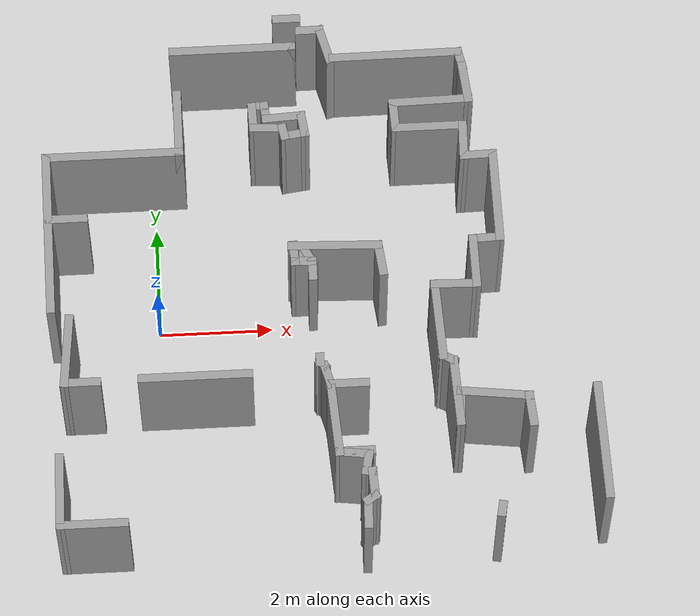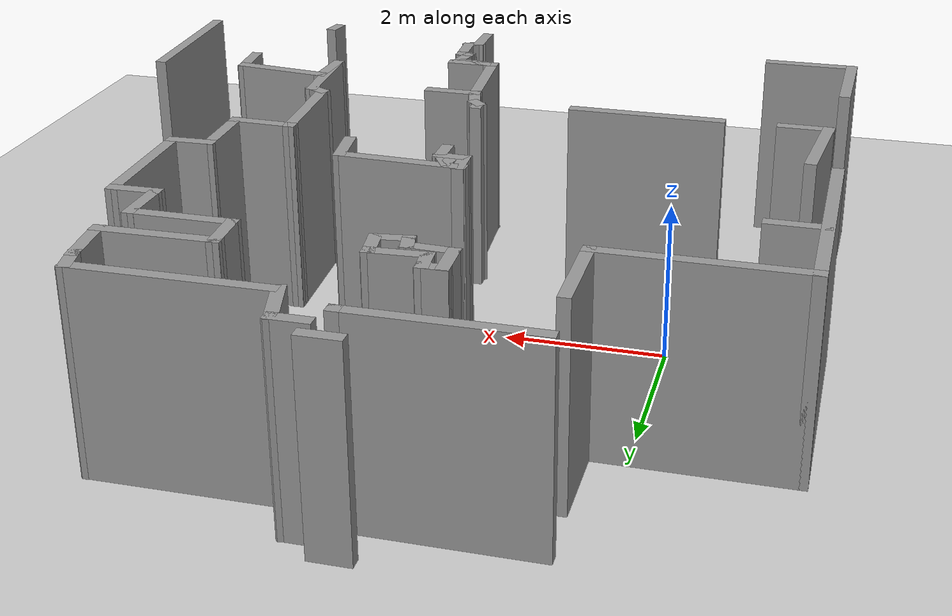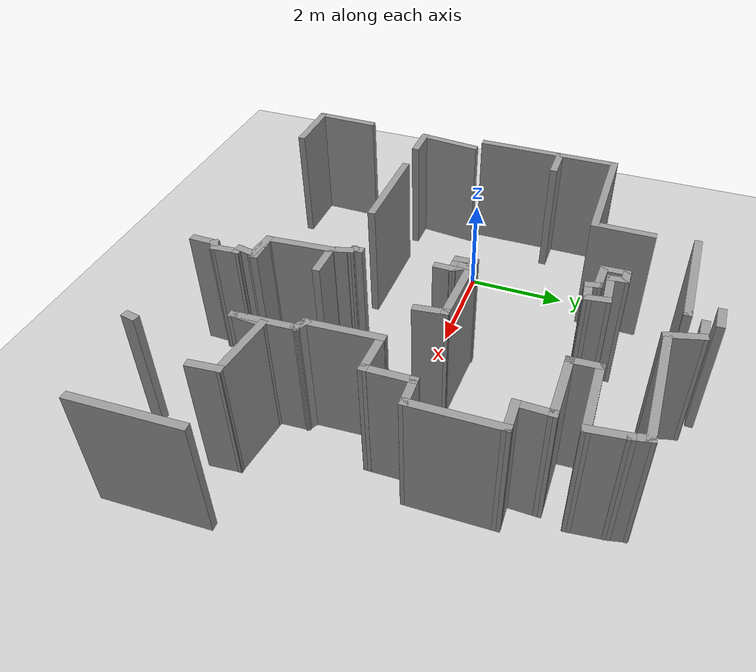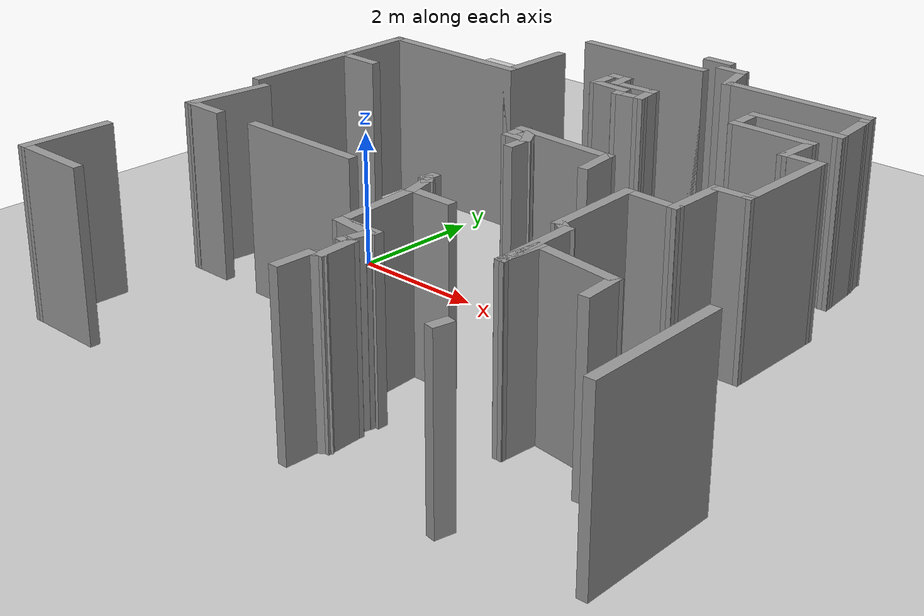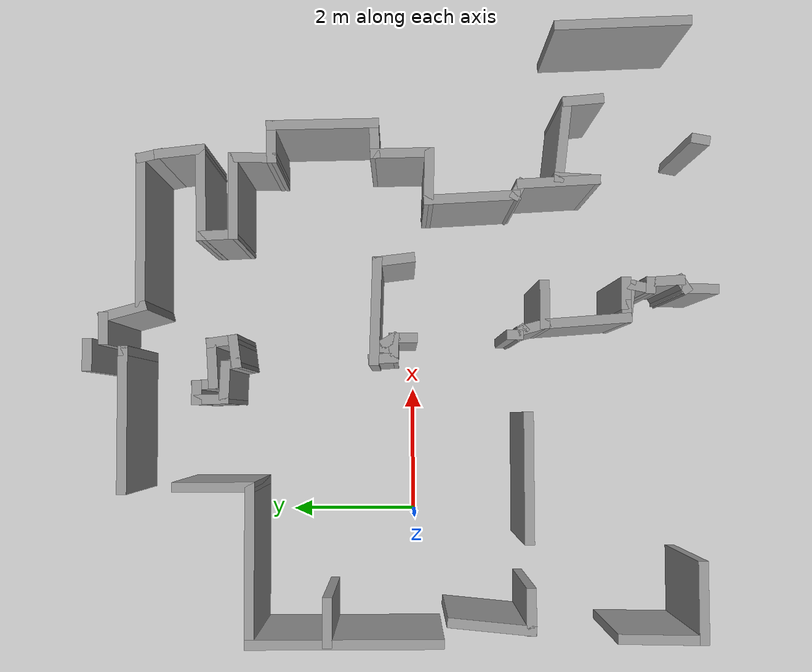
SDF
<sdf version="1.6">
 <world name="default">
  <model name="ground_plane">
   <static>1</static>
   <link name="link">
    <collision name="collision">
     <geometry><plane><normal>0 0 1</normal><size>100 100</size></plane></geometry>
     <surface><friction><ode><mu>100</mu><mu2>50</mu2></ode></friction></surface>
    </collision>
    <visual name="visual">
     <cast_shadows>0</cast_shadows>
     <geometry><plane><normal>0 0 1</normal><size>100 100</size></plane></geometry>
     <material>
      <script><uri>file://media/materials/scripts/gazebo.material</uri><name>Gazebo/Grey</name></script>
     </material>
    </visual>
   </link>
  </model>
  <model name="amtc_draft">
   <pose>2.88328 0.198841 0 0 -0 0</pose>
   <link name="Wall_0">
    <collision name="Wall_0_Collision">
     <geometry><box><size>2.25 0.15 2.5</size></box></geometry>
     <pose>0 0 1.25 0 -0 0</pose>
    </collision>
    <visual name="Wall_0_Visual">
     <pose>0 0 1.25 0 -0 0</pose>
     <geometry><box><size>2.25 0.15 2.5</size></box></geometry>
     <material>
      <script><uri>file://media/materials/scripts/gazebo.material</uri><name>Gazebo/Grey</name></script>
      <ambient>1 1 1 1</ambient>
     </material>
     <meta><layer>0</layer></meta>
    </visual>
    <pose>-1.37369 4.2257 0 0 -0 0</pose>
   </link>
   <link name="Wall_1">
    <collision name="Wall_1_Collision">
     <geometry><box><size>0.15 0.15 2.5</size></box></geometry>
     <pose>0 0 1.25 0 -0 0</pose>
    </collision>
    <visual name="Wall_1_Visual">
     <pose>0 0 1.25 0 -0 0</pose>
     <geometry><box><size>0.15 0.15 2.5</size></box></geometry>
     <material>
      <script><uri>file://media/materials/scripts/gazebo.material</uri><name>Gazebo/Grey</name></script>
      <ambient>1 1 1 1</ambient>
     </material>
     <meta><layer>0</layer></meta>
    </visual>
    <pose>-0.323685 4.2257 0 0 -0 0</pose>
   </link>
   <link name="Wall_11">
    <collision name="Wall_11_Collision">
     <geometry><box><size>2.5 0.15 2.5</size></box></geometry>
     <pose>0 0 1.25 0 -0 0</pose>
    </collision>
    <visual name="Wall_11_Visual">
     <pose>0 0 1.25 0 -0 0</pose>
     <geometry><box><size>2.5 0.15 2.5</size></box></geometry>
     <material>
      <script><uri>file://media/materials/scripts/gazebo.material</uri><name>Gazebo/Grey</name></script>
      <ambient>1 1 1 1</ambient>
     </material>
     <meta><layer>0</layer></meta>
    </visual>
    <pose>-3.56442 2.29394 0 0 -0 0</pose>
   </link>
   <link name="Wall_12">
    <collision name="Wall_12_Collision">
     <geometry><box><size>1.25 0.15 2.5</size></box></geometry>
     <pose>0 0 1.25 0 -0 0</pose>
    </collision>
    <visual name="Wall_12_Visual">
     <pose>0 0 1.25 0 -0 0</pose>
     <geometry><box><size>1.25 0.15 2.5</size></box></geometry>
     <material>
      <script><uri>file://media/materials/scripts/gazebo.material</uri><name>Gazebo/Grey</name></script>
      <ambient>1 1 1 1</ambient>
     </material>
     <meta><layer>0</layer></meta>
    </visual>
    <pose>-2.38942 2.84394 0 0 -0 1.5708</pose>
   </link>
   <link name="Wall_14">
    <collision name="Wall_14_Collision">
     <geometry><box><size>3 0.15 2.5</size></box></geometry>
     <pose>0 0 1.25 0 -0 0</pose>
    </collision>
    <visual name="Wall_14_Visual">
     <pose>0 0 1.25 0 -0 0</pose>
     <geometry><box><size>3 0.15 2.5</size></box></geometry>
     <material>
      <script><uri>file://media/materials/scripts/gazebo.material</uri><name>Gazebo/Grey</name></script>
      <ambient>1 1 1 1</ambient>
     </material>
     <meta><layer>0</layer></meta>
    </visual>
    <pose>-4.73942 0.868941 0 0 0 -1.5708</pose>
   </link>
   <link name="Wall_16">
    <collision name="Wall_16_Collision">
     <geometry><box><size>1.34561 0.15 2.5</size></box></geometry>
     <pose>0 0 1.25 0 -0 0</pose>
    </collision>
    <visual name="Wall_16_Visual">
     <pose>0 0 1.25 0 -0 0</pose>
     <geometry><box><size>1.34561 0.15 2.5</size></box></geometry>
     <material>
      <script><uri>file://media/materials/scripts/gazebo.material</uri><name>Gazebo/Grey</name></script>
      <ambient>1 1 1 1</ambient>
     </material>
     <meta><layer>0</layer></meta>
    </visual>
    <pose>-4.48581 -1.34399 0 0 0 -1.67338</pose>
   </link>
   <link name="Wall_17">
    <collision name="Wall_17_Collision">
     <geometry><box><size>0.709682 0.15 2.5</size></box></geometry>
     <pose>0 0 1.25 0 -0 0</pose>
    </collision>
    <visual name="Wall_17_Visual">
     <pose>0 0 1.25 0 -0 0</pose>
     <geometry><box><size>0.709682 0.15 2.5</size></box></geometry>
     <material>
      <script><uri>file://media/materials/scripts/gazebo.material</uri><name>Gazebo/Grey</name></script>
      <ambient>1 1 1 1</ambient>
     </material>
     <meta><layer>0</layer></meta>
    </visual>
    <pose>-4.26719 -1.93865 0 0 -0 0</pose>
   </link>
   <link name="Wall_19">
    <collision name="Wall_19_Collision">
     <geometry><box><size>2 0.15 2.5</size></box></geometry>
     <pose>0 0 1.25 0 -0 0</pose>
    </collision>
    <visual name="Wall_19_Visual">
     <pose>0 0 1.25 0 -0 0</pose>
     <geometry><box><size>2 0.15 2.5</size></box></geometry>
     <material>
      <script><uri>file://media/materials/scripts/gazebo.material</uri><name>Gazebo/Grey</name></script>
      <ambient>1 1 1 1</ambient>
     </material>
     <meta><layer>0</layer></meta>
    </visual>
    <pose>-2.27529 -1.92116 0 0 -0 0</pose>
   </link>
   <link name="Wall_2">
    <collision name="Wall_2_Collision">
     <geometry><box><size>0.15 0.15 2.5</size></box></geometry>
     <pose>0 0 1.25 0 -0 0</pose>
    </collision>
    <visual name="Wall_2_Visual">
     <pose>0 0 1.25 0 -0 0</pose>
     <geometry><box><size>0.15 0.15 2.5</size></box></geometry>
     <material>
      <script><uri>file://media/materials/scripts/gazebo.material</uri><name>Gazebo/Grey</name></script>
      <ambient>1 1 1 1</ambient>
     </material>
     <meta><layer>0</layer></meta>
    </visual>
    <pose>-0.323685 4.2257 0 0 -0 0</pose>
   </link>
   <link name="Wall_22">
    <collision name="Wall_22_Collision">
     <geometry><box><size>0.25 0.15 2.5</size></box></geometry>
     <pose>0 0 1.25 0 -0 0</pose>
    </collision>
    <visual name="Wall_22_Visual">
     <pose>0 0 1.25 0 -0 0</pose>
     <geometry><box><size>0.25 0.15 2.5</size></box></geometry>
     <material>
      <script><uri>file://media/materials/scripts/gazebo.material</uri><name>Gazebo/Grey</name></script>
      <ambient>1 1 1 1</ambient>
     </material>
     <meta><layer>0</layer></meta>
    </visual>
    <pose>-0.104552 -1.7263 0 0 0 -1.5708</pose>
   </link>
   <link name="Wall_23">
    <collision name="Wall_23_Collision">
     <geometry><box><size>0.25 0.15 2.5</size></box></geometry>
     <pose>0 0 1.25 0 -0 0</pose>
    </collision>
    <visual name="Wall_23_Visual">
     <pose>0 0 1.25 0 -0 0</pose>
     <geometry><box><size>0.25 0.15 2.5</size></box></geometry>
     <material>
      <script><uri>file://media/materials/scripts/gazebo.material</uri><name>Gazebo/Grey</name></script>
      <ambient>1 1 1 1</ambient>
     </material>
     <meta><layer>0</layer></meta>
    </visual>
    <pose>-0.069196 -1.81166 0 0 0 -0.785398</pose>
   </link>
   <link name="Wall_24">
    <collision name="Wall_24_Collision">
     <geometry><box><size>0.5 0.15 2.5</size></box></geometry>
     <pose>0 0 1.25 0 -0 0</pose>
    </collision>
    <visual name="Wall_24_Visual">
     <pose>0 0 1.25 0 -0 0</pose>
     <geometry><box><size>0.5 0.15 2.5</size></box></geometry>
     <material>
      <script><uri>file://media/materials/scripts/gazebo.material</uri><name>Gazebo/Grey</name></script>
      <ambient>1 1 1 1</ambient>
     </material>
     <meta><layer>0</layer></meta>
    </visual>
    <pose>0.011452 -2.01605 0 0 0 -1.309</pose>
   </link>
   <link name="Wall_25">
    <collision name="Wall_25_Collision">
     <geometry><box><size>0.75 0.15 2.5</size></box></geometry>
     <pose>0 0 1.25 0 -0 0</pose>
    </collision>
    <visual name="Wall_25_Visual">
     <pose>0 0 1.25 0 -0 0</pose>
     <geometry><box><size>0.75 0.15 2.5</size></box></geometry>
     <material>
      <script><uri>file://media/materials/scripts/gazebo.material</uri><name>Gazebo/Grey</name></script>
      <ambient>1 1 1 1</ambient>
     </material>
     <meta><layer>0</layer></meta>
    </visual>
    <pose>0.356746 -2.18509 0 0 -0 0</pose>
   </link>
   <link name="Wall_29">
    <collision name="Wall_29_Collision">
     <geometry><box><size>0.5 0.15 2.5</size></box></geometry>
     <pose>0 0 1.25 0 -0 0</pose>
    </collision>
    <visual name="Wall_29_Visual">
     <pose>0 0 1.25 0 -0 0</pose>
     <geometry><box><size>0.5 0.15 2.5</size></box></geometry>
     <material>
      <script><uri>file://media/materials/scripts/gazebo.material</uri><name>Gazebo/Grey</name></script>
      <ambient>1 1 1 1</ambient>
     </material>
     <meta><layer>0</layer></meta>
    </visual>
    <pose>0.518345 -3.42555 0 0 -0 3.14159</pose>
   </link>
   <link name="Wall_30">
    <collision name="Wall_30_Collision">
     <geometry><box><size>0.25 0.15 2.5</size></box></geometry>
     <pose>0 0 1.25 0 -0 0</pose>
    </collision>
    <visual name="Wall_30_Visual">
     <pose>0 0 1.25 0 -0 0</pose>
     <geometry><box><size>0.25 0.15 2.5</size></box></geometry>
     <material>
      <script><uri>file://media/materials/scripts/gazebo.material</uri><name>Gazebo/Grey</name></script>
      <ambient>1 1 1 1</ambient>
     </material>
     <meta><layer>0</layer></meta>
    </visual>
    <pose>0.293345 -3.42555 0 0 -0 3.14159</pose>
   </link>
   <link name="Wall_32">
    <collision name="Wall_32_Collision">
     <geometry><box><size>1.40231 0.15 2.5</size></box></geometry>
     <pose>0 0 1.25 0 -0 0</pose>
    </collision>
    <visual name="Wall_32_Visual">
     <pose>0 0 1.25 0 -0 0</pose>
     <geometry><box><size>1.40231 0.15 2.5</size></box></geometry>
     <material>
      <script><uri>file://media/materials/scripts/gazebo.material</uri><name>Gazebo/Grey</name></script>
      <ambient>1 1 1 1</ambient>
     </material>
     <meta><layer>0</layer></meta>
    </visual>
    <pose>0.101132 -2.80967 0 0 0 -1.49985</pose>
   </link>
   <link name="Wall_33">
    <collision name="Wall_33_Collision">
     <geometry><box><size>0.658008 0.15 2.5</size></box></geometry>
     <pose>0 0 1.25 0 -0 0</pose>
    </collision>
    <visual name="Wall_33_Visual">
     <pose>0 0 1.25 0 -0 0</pose>
     <geometry><box><size>0.658008 0.15 2.5</size></box></geometry>
     <material>
      <script><uri>file://media/materials/scripts/gazebo.material</uri><name>Gazebo/Grey</name></script>
      <ambient>1 1 1 1</ambient>
     </material>
     <meta><layer>0</layer></meta>
    </visual>
    <pose>0.397693 -3.46468 0 0 0 -0.120109</pose>
   </link>
   <link name="Wall_34">
    <collision name="Wall_34_Collision">
     <geometry><box><size>0.460375 0.15 2.5</size></box></geometry>
     <pose>0 0 1.25 0 -0 0</pose>
    </collision>
    <visual name="Wall_34_Visual">
     <pose>0 0 1.25 0 -0 0</pose>
     <geometry><box><size>0.460375 0.15 2.5</size></box></geometry>
     <material>
      <script><uri>file://media/materials/scripts/gazebo.material</uri><name>Gazebo/Grey</name></script>
      <ambient>1 1 1 1</ambient>
     </material>
     <meta><layer>0</layer></meta>
    </visual>
    <pose>0.619432 -3.64729 0 0 0 -1.76819</pose>
   </link>
   <link name="Wall_35">
    <collision name="Wall_35_Collision">
     <geometry><box><size>0.25471 0.15 2.5</size></box></geometry>
     <pose>0 0 1.25 0 -0 0</pose>
    </collision>
    <visual name="Wall_35_Visual">
     <pose>0 0 1.25 0 -0 0</pose>
     <geometry><box><size>0.25471 0.15 2.5</size></box></geometry>
     <material>
      <script><uri>file://media/materials/scripts/gazebo.material</uri><name>Gazebo/Grey</name></script>
      <ambient>1 1 1 1</ambient>
     </material>
     <meta><layer>0</layer></meta>
    </visual>
    <pose>0.641171 -3.80381 0 0 0 -0.083141</pose>
   </link>
   <link name="Wall_36">
    <collision name="Wall_36_Collision">
     <geometry><box><size>0.594245 0.15 2.5</size></box></geometry>
     <pose>0 0 1.25 0 -0 0</pose>
    </collision>
    <visual name="Wall_36_Visual">
     <pose>0 0 1.25 0 -0 0</pose>
     <geometry><box><size>0.594245 0.15 2.5</size></box></geometry>
     <material>
      <script><uri>file://media/materials/scripts/gazebo.material</uri><name>Gazebo/Grey</name></script>
      <ambient>1 1 1 1</ambient>
     </material>
     <meta><layer>0</layer></meta>
    </visual>
    <pose>0.706388 -4.0299 0 0 0 -1.51204</pose>
   </link>
   <link name="Wall_37">
    <collision name="Wall_37_Collision">
     <geometry><box><size>0.306763 0.15 2.5</size></box></geometry>
     <pose>0 0 1.25 0 -0 0</pose>
    </collision>
    <visual name="Wall_37_Visual">
     <pose>0 0 1.25 0 -0 0</pose>
     <geometry><box><size>0.306763 0.15 2.5</size></box></geometry>
     <material>
      <script><uri>file://media/materials/scripts/gazebo.material</uri><name>Gazebo/Grey</name></script>
      <ambient>1 1 1 1</ambient>
     </material>
     <meta><layer>0</layer></meta>
    </visual>
    <pose>0.654214 -4.29512 0 0 0 -2.55359</pose>
   </link>
   <link name="Wall_38">
    <collision name="Wall_38_Collision">
     <geometry><box><size>0.576176 0.15 2.5</size></box></geometry>
     <pose>0 0 1.25 0 -0 0</pose>
    </collision>
    <visual name="Wall_38_Visual">
     <pose>0 0 1.25 0 -0 0</pose>
     <geometry><box><size>0.576176 0.15 2.5</size></box></geometry>
     <material>
      <script><uri>file://media/materials/scripts/gazebo.material</uri><name>Gazebo/Grey</name></script>
      <ambient>1 1 1 1</ambient>
     </material>
     <meta><layer>0</layer></meta>
    </visual>
    <pose>0.584649 -4.55164 0 0 0 -1.5912</pose>
   </link>
   <link name="Wall_4">
    <collision name="Wall_4_Collision">
     <geometry><box><size>0.5 0.15 2.5</size></box></geometry>
     <pose>0 0 1.25 0 -0 0</pose>
    </collision>
    <visual name="Wall_4_Visual">
     <pose>0 0 1.25 0 -0 0</pose>
     <geometry><box><size>0.5 0.15 2.5</size></box></geometry>
     <material>
      <script><uri>file://media/materials/scripts/gazebo.material</uri><name>Gazebo/Grey</name></script>
      <ambient>1 1 1 1</ambient>
     </material>
     <meta><layer>0</layer></meta>
    </visual>
    <pose>-0.385685 4.7662 0 0 -0 0</pose>
   </link>
   <link name="Wall_40">
    <collision name="Wall_40_Collision">
     <geometry><box><size>0.291555 0.15 2.5</size></box></geometry>
     <pose>0 0 1.25 0 -0 0</pose>
    </collision>
    <visual name="Wall_40_Visual">
     <pose>0 0 1.25 0 -0 0</pose>
     <geometry><box><size>0.291555 0.15 2.5</size></box></geometry>
     <material>
      <script><uri>file://media/materials/scripts/gazebo.material</uri><name>Gazebo/Grey</name></script>
      <ambient>1 1 1 1</ambient>
     </material>
     <meta><layer>0</layer></meta>
    </visual>
    <pose>2.8803 -4.59947 0 0 -0 1.38545</pose>
   </link>
   <link name="Wall_42">
    <collision name="Wall_42_Collision">
     <geometry><box><size>2.12514 0.15 2.5</size></box></geometry>
     <pose>0 0 1.25 0 -0 0</pose>
    </collision>
    <visual name="Wall_42_Visual">
     <pose>0 0 1.25 0 -0 0</pose>
     <geometry><box><size>2.12514 0.15 2.5</size></box></geometry>
     <material>
      <script><uri>file://media/materials/scripts/gazebo.material</uri><name>Gazebo/Grey</name></script>
      <ambient>1 1 1 1</ambient>
     </material>
     <meta><layer>0</layer></meta>
    </visual>
    <pose>4.70204 -3.4386 0 0 -0 1.60602</pose>
   </link>
   <link name="Wall_44">
    <collision name="Wall_44_Collision">
     <geometry><box><size>0.638894 0.15 2.5</size></box></geometry>
     <pose>0 0 1.25 0 -0 0</pose>
    </collision>
    <visual name="Wall_44_Visual">
     <pose>0 0 1.25 0 -0 0</pose>
     <geometry><box><size>0.638894 0.15 2.5</size></box></geometry>
     <material>
      <script><uri>file://media/materials/scripts/gazebo.material</uri><name>Gazebo/Grey</name></script>
      <ambient>1 1 1 1</ambient>
     </material>
     <meta><layer>0</layer></meta>
    </visual>
    <pose>3.49769 -2.80816 0 0 -0 1.65985</pose>
   </link>
   <link name="Wall_45">
    <collision name="Wall_45_Collision">
     <geometry><box><size>1.33213 0.15 2.5</size></box></geometry>
     <pose>0 0 1.25 0 -0 0</pose>
    </collision>
    <visual name="Wall_45_Visual">
     <pose>0 0 1.25 0 -0 0</pose>
     <geometry><box><size>1.33213 0.15 2.5</size></box></geometry>
     <material>
      <script><uri>file://media/materials/scripts/gazebo.material</uri><name>Gazebo/Grey</name></script>
      <ambient>1 1 1 1</ambient>
     </material>
     <meta><layer>0</layer></meta>
    </visual>
    <pose>2.889 -2.49512 0 0 -0 3.02362</pose>
   </link>
   <link name="Wall_46">
    <collision name="Wall_46_Collision">
     <geometry><box><size>0.707608 0.15 2.5</size></box></geometry>
     <pose>0 0 1.25 0 -0 0</pose>
    </collision>
    <visual name="Wall_46_Visual">
     <pose>0 0 1.25 0 -0 0</pose>
     <geometry><box><size>0.707608 0.15 2.5</size></box></geometry>
     <material>
      <script><uri>file://media/materials/scripts/gazebo.material</uri><name>Gazebo/Grey</name></script>
      <ambient>1 1 1 1</ambient>
     </material>
     <meta><layer>0</layer></meta>
    </visual>
    <pose>2.28465 -2.70382 0 0 0 -1.63322</pose>
   </link>
   <link name="Wall_47">
    <collision name="Wall_47_Collision">
     <geometry><box><size>1.28207 0.15 2.5</size></box></geometry>
     <pose>0 0 1.25 0 -0 0</pose>
    </collision>
    <visual name="Wall_47_Visual">
     <pose>0 0 1.25 0 -0 0</pose>
     <geometry><box><size>1.28207 0.15 2.5</size></box></geometry>
     <material>
      <script><uri>file://media/materials/scripts/gazebo.material</uri><name>Gazebo/Grey</name></script>
      <ambient>1 1 1 1</ambient>
     </material>
     <meta><layer>0</layer></meta>
    </visual>
    <pose>2.23682 -2.41686 0 0 -0 1.62459</pose>
   </link>
   <link name="Wall_48">
    <collision name="Wall_48_Collision">
     <geometry><box><size>0.348482 0.15 2.5</size></box></geometry>
     <pose>0 0 1.25 0 -0 0</pose>
    </collision>
    <visual name="Wall_48_Visual">
     <pose>0 0 1.25 0 -0 0</pose>
     <geometry><box><size>0.348482 0.15 2.5</size></box></geometry>
     <material>
      <script><uri>file://media/materials/scripts/gazebo.material</uri><name>Gazebo/Grey</name></script>
      <ambient>1 1 1 1</ambient>
     </material>
     <meta><layer>0</layer></meta>
    </visual>
    <pose>2.11943 -1.80381 0 0 -0 2.63875</pose>
   </link>
   <link name="Wall_49">
    <collision name="Wall_49_Collision">
     <geometry><box><size>1.48273 0.15 2.5</size></box></geometry>
     <pose>0 0 1.25 0 -0 0</pose>
    </collision>
    <visual name="Wall_49_Visual">
     <pose>0 0 1.25 0 -0 0</pose>
     <geometry><box><size>1.48273 0.15 2.5</size></box></geometry>
     <material>
      <script><uri>file://media/materials/scripts/gazebo.material</uri><name>Gazebo/Grey</name></script>
      <ambient>1 1 1 1</ambient>
     </material>
     <meta><layer>0</layer></meta>
    </visual>
    <pose>1.99769 -1.09077 0 0 -0 1.62304</pose>
   </link>
   <link name="Wall_50">
    <collision name="Wall_50_Collision">
     <geometry><box><size>0.883246 0.15 2.5</size></box></geometry>
     <pose>0 0 1.25 0 -0 0</pose>
    </collision>
    <visual name="Wall_50_Visual">
     <pose>0 0 1.25 0 -0 0</pose>
     <geometry><box><size>0.883246 0.15 2.5</size></box></geometry>
     <material>
      <script><uri>file://media/materials/scripts/gazebo.material</uri><name>Gazebo/Grey</name></script>
      <ambient>1 1 1 1</ambient>
     </material>
     <meta><layer>0</layer></meta>
    </visual>
    <pose>2.32948 -0.434793 0 0 0 -0.0252</pose>
   </link>
   <link name="Wall_51">
    <collision name="Wall_51_Collision">
     <geometry><box><size>0.986619 0.15 2.5</size></box></geometry>
     <pose>0 0 1.25 0 -0 0</pose>
    </collision>
    <visual name="Wall_51_Visual">
     <pose>0 0 1.25 0 -0 0</pose>
     <geometry><box><size>0.986619 0.15 2.5</size></box></geometry>
     <material>
      <script><uri>file://media/materials/scripts/gazebo.material</uri><name>Gazebo/Grey</name></script>
      <ambient>1 1 1 1</ambient>
     </material>
     <meta><layer>0</layer></meta>
    </visual>
    <pose>2.68845 -0.025792 0 0 -0 1.58898</pose>
   </link>
   <link name="Wall_52">
    <collision name="Wall_52_Collision">
     <geometry><box><size>0.621716 0.15 2.5</size></box></geometry>
     <pose>0 0 1.25 0 -0 0</pose>
    </collision>
    <visual name="Wall_52_Visual">
     <pose>0 0 1.25 0 -0 0</pose>
     <geometry><box><size>0.621716 0.15 2.5</size></box></geometry>
     <material>
      <script><uri>file://media/materials/scripts/gazebo.material</uri><name>Gazebo/Grey</name></script>
      <ambient>1 1 1 1</ambient>
     </material>
     <meta><layer>0</layer></meta>
    </visual>
    <pose>2.91659 0.400053 0 0 -0 0.032247</pose>
   </link>
   <link name="Wall_53">
    <collision name="Wall_53_Collision">
     <geometry><box><size>1.72966 0.15 2.5</size></box></geometry>
     <pose>0 0 1.25 0 -0 0</pose>
    </collision>
    <visual name="Wall_53_Visual">
     <pose>0 0 1.25 0 -0 0</pose>
     <geometry><box><size>1.72966 0.15 2.5</size></box></geometry>
     <material>
      <script><uri>file://media/materials/scripts/gazebo.material</uri><name>Gazebo/Grey</name></script>
      <ambient>1 1 1 1</ambient>
     </material>
     <meta><layer>0</layer></meta>
    </visual>
    <pose>3.13851 1.19737 0 0 -0 1.58828</pose>
   </link>
   <link name="Wall_54">
    <collision name="Wall_54_Collision">
     <geometry><box><size>0.656131 0.15 2.5</size></box></geometry>
     <pose>0 0 1.25 0 -0 0</pose>
    </collision>
    <visual name="Wall_54_Visual">
     <pose>0 0 1.25 0 -0 0</pose>
     <geometry><box><size>0.656131 0.15 2.5</size></box></geometry>
     <material>
      <script><uri>file://media/materials/scripts/gazebo.material</uri><name>Gazebo/Grey</name></script>
      <ambient>1 1 1 1</ambient>
     </material>
     <meta><layer>0</layer></meta>
    </visual>
    <pose>2.87171 1.98133 0 0 0 -3.11887</pose>
   </link>
   <link name="Wall_55">
    <collision name="Wall_55_Collision">
     <geometry><box><size>0.736613 0.15 2.5</size></box></geometry>
     <pose>0 0 1.25 0 -0 0</pose>
    </collision>
    <visual name="Wall_55_Visual">
     <pose>0 0 1.25 0 -0 0</pose>
     <geometry><box><size>0.736613 0.15 2.5</size></box></geometry>
     <material>
      <script><uri>file://media/materials/scripts/gazebo.material</uri><name>Gazebo/Grey</name></script>
      <ambient>1 1 1 1</ambient>
     </material>
     <meta><layer>0</layer></meta>
    </visual>
    <pose>2.62446 2.26883 0 0 -0 1.55119</pose>
   </link>
   <link name="Wall_56">
    <collision name="Wall_56_Collision">
     <geometry><box><size>1.33472 0.15 2.5</size></box></geometry>
     <pose>0 0 1.25 0 -0 0</pose>
    </collision>
    <visual name="Wall_56_Visual">
     <pose>0 0 1.25 0 -0 0</pose>
     <geometry><box><size>1.33472 0.15 2.5</size></box></geometry>
     <material>
      <script><uri>file://media/materials/scripts/gazebo.material</uri><name>Gazebo/Grey</name></script>
      <ambient>1 1 1 1</ambient>
     </material>
     <meta><layer>0</layer></meta>
    </visual>
    <pose>2.03796 2.56208 0 0 -0 3.14159</pose>
   </link>
   <link name="Wall_57">
    <collision name="Wall_57_Collision">
     <geometry><box><size>0.633547 0.15 2.5</size></box></geometry>
     <pose>0 0 1.25 0 -0 0</pose>
    </collision>
    <visual name="Wall_57_Visual">
     <pose>0 0 1.25 0 -0 0</pose>
     <geometry><box><size>0.633547 0.15 2.5</size></box></geometry>
     <material>
      <script><uri>file://media/materials/scripts/gazebo.material</uri><name>Gazebo/Grey</name></script>
      <ambient>1 1 1 1</ambient>
     </material>
     <meta><layer>0</layer></meta>
    </visual>
    <pose>1.43421 2.80357 0 0 -0 1.61838</pose>
   </link>
   <link name="Wall_58">
    <collision name="Wall_58_Collision">
     <geometry><box><size>1.4842 0.15 2.5</size></box></geometry>
     <pose>0 0 1.25 0 -0 0</pose>
    </collision>
    <visual name="Wall_58_Visual">
     <pose>0 0 1.25 0 -0 0</pose>
     <geometry><box><size>1.4842 0.15 2.5</size></box></geometry>
     <material>
      <script><uri>file://media/materials/scripts/gazebo.material</uri><name>Gazebo/Grey</name></script>
      <ambient>1 1 1 1</ambient>
     </material>
     <meta><layer>0</layer></meta>
    </visual>
    <pose>2.08971 3.05658 0 0 -0 0.01724</pose>
   </link>
   <link name="Wall_59">
    <collision name="Wall_59_Collision">
     <geometry><box><size>0.786253 0.15 2.5</size></box></geometry>
     <pose>0 0 1.25 0 -0 0</pose>
    </collision>
    <visual name="Wall_59_Visual">
     <pose>0 0 1.25 0 -0 0</pose>
     <geometry><box><size>0.786253 0.15 2.5</size></box></geometry>
     <material>
      <script><uri>file://media/materials/scripts/gazebo.material</uri><name>Gazebo/Grey</name></script>
      <ambient>1 1 1 1</ambient>
     </material>
     <meta><layer>0</layer></meta>
    </visual>
    <pose>2.72221 3.38433 0 0 -0 1.67946</pose>
   </link>
   <link name="Wall_60">
    <collision name="Wall_60_Collision">
     <geometry><box><size>0.431926 0.15 2.5</size></box></geometry>
     <pose>0 0 1.25 0 -0 0</pose>
    </collision>
    <visual name="Wall_60_Visual">
     <pose>0 0 1.25 0 -0 0</pose>
     <geometry><box><size>0.431926 0.15 2.5</size></box></geometry>
     <material>
      <script><uri>file://media/materials/scripts/gazebo.material</uri><name>Gazebo/Grey</name></script>
      <ambient>1 1 1 1</ambient>
     </material>
     <meta><layer>0</layer></meta>
    </visual>
    <pose>2.65896 3.83858 0 0 -0 1.77619</pose>
   </link>
   <link name="Wall_61">
    <collision name="Wall_61_Collision">
     <geometry><box><size>2.36953 0.15 2.5</size></box></geometry>
     <pose>0 0 1.25 0 -0 0</pose>
    </collision>
    <visual name="Wall_61_Visual">
     <pose>0 0 1.25 0 -0 0</pose>
     <geometry><box><size>2.36953 0.15 2.5</size></box></geometry>
     <material>
      <script><uri>file://media/materials/scripts/gazebo.material</uri><name>Gazebo/Grey</name></script>
      <ambient>1 1 1 1</ambient>
     </material>
     <meta><layer>0</layer></meta>
    </visual>
    <pose>1.52046 3.97083 0 0 0 -3.13641</pose>
   </link>
   <link name="Wall_63">
    <collision name="Wall_63_Collision">
     <geometry><box><size>0.552664 0.15 2.5</size></box></geometry>
     <pose>0 0 1.25 0 -0 0</pose>
    </collision>
    <visual name="Wall_63_Visual">
     <pose>0 0 1.25 0 -0 0</pose>
     <geometry><box><size>0.552664 0.15 2.5</size></box></geometry>
     <material>
      <script><uri>file://media/materials/scripts/gazebo.material</uri><name>Gazebo/Grey</name></script>
      <ambient>1 1 1 1</ambient>
     </material>
     <meta><layer>0</layer></meta>
    </visual>
    <pose>-1.06704 2.88983 0 0 0 -1.54223</pose>
   </link>
   <link name="Wall_64">
    <collision name="Wall_64_Collision">
     <geometry><box><size>0.656522 0.15 2.5</size></box></geometry>
     <pose>0 0 1.25 0 -0 0</pose>
    </collision>
    <visual name="Wall_64_Visual">
     <pose>0 0 1.25 0 -0 0</pose>
     <geometry><box><size>0.656522 0.15 2.5</size></box></geometry>
     <material>
      <script><uri>file://media/materials/scripts/gazebo.material</uri><name>Gazebo/Grey</name></script>
      <ambient>1 1 1 1</ambient>
     </material>
     <meta><layer>0</layer></meta>
    </visual>
    <pose>-0.808293 2.67707 0 0 0 -0.045423</pose>
   </link>
   <link name="Wall_65">
    <collision name="Wall_65_Collision">
     <geometry><box><size>0.314655 0.15 2.5</size></box></geometry>
     <pose>0 0 1.25 0 -0 0</pose>
    </collision>
    <visual name="Wall_65_Visual">
     <pose>0 0 1.25 0 -0 0</pose>
     <geometry><box><size>0.314655 0.15 2.5</size></box></geometry>
     <material>
      <script><uri>file://media/materials/scripts/gazebo.material</uri><name>Gazebo/Grey</name></script>
      <ambient>1 1 1 1</ambient>
     </material>
     <meta><layer>0</layer></meta>
    </visual>
    <pose>-0.538043 2.58507 0 0 0 -1.3597</pose>
   </link>
   <link name="Wall_66">
    <collision name="Wall_66_Collision">
     <geometry><box><size>0.509455 0.15 2.5</size></box></geometry>
     <pose>0 0 1.25 0 -0 0</pose>
    </collision>
    <visual name="Wall_66_Visual">
     <pose>0 0 1.25 0 -0 0</pose>
     <geometry><box><size>0.509455 0.15 2.5</size></box></geometry>
     <material>
      <script><uri>file://media/materials/scripts/gazebo.material</uri><name>Gazebo/Grey</name></script>
      <ambient>1 1 1 1</ambient>
     </material>
     <meta><layer>0</layer></meta>
    </visual>
    <pose>-0.342543 2.52758 0 0 -0 0.128323</pose>
   </link>
   <link name="Wall_67">
    <collision name="Wall_67_Collision">
     <geometry><box><size>0.486657 0.15 2.5</size></box></geometry>
     <pose>0 0 1.25 0 -0 0</pose>
    </collision>
    <visual name="Wall_67_Visual">
     <pose>0 0 1.25 0 -0 0</pose>
     <geometry><box><size>0.486657 0.15 2.5</size></box></geometry>
     <material>
      <script><uri>file://media/materials/scripts/gazebo.material</uri><name>Gazebo/Grey</name></script>
      <ambient>1 1 1 1</ambient>
     </material>
     <meta><layer>0</layer></meta>
    </visual>
    <pose>-0.187293 2.71733 0 0 -0 1.70786</pose>
   </link>
   <link name="Wall_68">
    <collision name="Wall_68_Collision">
     <geometry><box><size>0.772701 0.15 2.5</size></box></geometry>
     <pose>0 0 1.25 0 -0 0</pose>
    </collision>
    <visual name="Wall_68_Visual">
     <pose>0 0 1.25 0 -0 0</pose>
     <geometry><box><size>0.772701 0.15 2.5</size></box></geometry>
     <material>
      <script><uri>file://media/materials/scripts/gazebo.material</uri><name>Gazebo/Grey</name></script>
      <ambient>1 1 1 1</ambient>
     </material>
     <meta><layer>0</layer></meta>
    </visual>
    <pose>-0.520793 2.86682 0 0 0 -3.08609</pose>
   </link>
   <link name="Wall_69">
    <collision name="Wall_69_Collision">
     <geometry><box><size>0.404043 0.15 2.5</size></box></geometry>
     <pose>0 0 1.25 0 -0 0</pose>
    </collision>
    <visual name="Wall_69_Visual">
     <pose>0 0 1.25 0 -0 0</pose>
     <geometry><box><size>0.404043 0.15 2.5</size></box></geometry>
     <material>
      <script><uri>file://media/materials/scripts/gazebo.material</uri><name>Gazebo/Grey</name></script>
      <ambient>1 1 1 1</ambient>
     </material>
     <meta><layer>0</layer></meta>
    </visual>
    <pose>-0.842793 2.97607 0 0 -0 1.66146</pose>
   </link>
   <link name="Wall_70">
    <collision name="Wall_70_Collision">
     <geometry><box><size>0.3685 0.15 2.5</size></box></geometry>
     <pose>0 0 1.25 0 -0 0</pose>
    </collision>
    <visual name="Wall_70_Visual">
     <pose>0 0 1.25 0 -0 0</pose>
     <geometry><box><size>0.3685 0.15 2.5</size></box></geometry>
     <material>
      <script><uri>file://media/materials/scripts/gazebo.material</uri><name>Gazebo/Grey</name></script>
      <ambient>1 1 1 1</ambient>
     </material>
     <meta><layer>0</layer></meta>
    </visual>
    <pose>-0.963543 3.10257 0 0 -0 3.14159</pose>
   </link>
   <link name="Wall_72">
    <collision name="Wall_72_Collision">
     <geometry><box><size>1.65566 0.15 2.5</size></box></geometry>
     <pose>0 0 1.25 0 -0 0</pose>
    </collision>
    <visual name="Wall_72_Visual">
     <pose>0 0 1.25 0 -0 0</pose>
     <geometry><box><size>1.65566 0.15 2.5</size></box></geometry>
     <material>
      <script><uri>file://media/materials/scripts/gazebo.material</uri><name>Gazebo/Grey</name></script>
      <ambient>1 1 1 1</ambient>
     </material>
     <meta><layer>0</layer></meta>
    </visual>
    <pose>0.264041 0.386656 0 0 0 -0.035161</pose>
   </link>
   <link name="Wall_73">
    <collision name="Wall_73_Collision">
     <geometry><box><size>0.652708 0.15 2.5</size></box></geometry>
     <pose>0 0 1.25 0 -0 0</pose>
    </collision>
    <visual name="Wall_73_Visual">
     <pose>0 0 1.25 0 -0 0</pose>
     <geometry><box><size>0.652708 0.15 2.5</size></box></geometry>
     <material>
      <script><uri>file://media/materials/scripts/gazebo.material</uri><name>Gazebo/Grey</name></script>
      <ambient>1 1 1 1</ambient>
     </material>
     <meta><layer>0</layer></meta>
    </visual>
    <pose>1.04665 0.110664 0 0 0 -1.45017</pose>
   </link>
   <link name="Wall_75">
    <collision name="Wall_75_Collision">
     <geometry><box><size>0.460111 0.15 2.5</size></box></geometry>
     <pose>0 0 1.25 0 -0 0</pose>
    </collision>
    <visual name="Wall_75_Visual">
     <pose>0 0 1.25 0 -0 0</pose>
     <geometry><box><size>0.460111 0.15 2.5</size></box></geometry>
     <material>
      <script><uri>file://media/materials/scripts/gazebo.material</uri><name>Gazebo/Grey</name></script>
      <ambient>1 1 1 1</ambient>
     </material>
     <meta><layer>0</layer></meta>
    </visual>
    <pose>-0.458076 0.273235 0 0 0 -1.52205</pose>
   </link>
   <link name="Wall_76">
    <collision name="Wall_76_Collision">
     <geometry><box><size>0.452552 0.15 2.5</size></box></geometry>
     <pose>0 0 1.25 0 -0 0</pose>
    </collision>
    <visual name="Wall_76_Visual">
     <pose>0 0 1.25 0 -0 0</pose>
     <geometry><box><size>0.452552 0.15 2.5</size></box></geometry>
     <material>
      <script><uri>file://media/materials/scripts/gazebo.material</uri><name>Gazebo/Grey</name></script>
      <ambient>1 1 1 1</ambient>
     </material>
     <meta><layer>0</layer></meta>
    </visual>
    <pose>-0.299286 0.114444 0 0 0 -0.024995</pose>
   </link>
   <link name="Wall_77">
    <collision name="Wall_77_Collision">
     <geometry><box><size>0.430691 0.15 2.5</size></box></geometry>
     <pose>0 0 1.25 0 -0 0</pose>
    </collision>
    <visual name="Wall_77_Visual">
     <pose>0 0 1.25 0 -0 0</pose>
     <geometry><box><size>0.430691 0.15 2.5</size></box></geometry>
     <material>
      <script><uri>file://media/materials/scripts/gazebo.material</uri><name>Gazebo/Grey</name></script>
      <ambient>1 1 1 1</ambient>
     </material>
     <meta><layer>0</layer></meta>
    </visual>
    <pose>-0.148058 -0.029223 0 0 0 -1.5708</pose>
   </link>
   <link name="Wall_79">
    <collision name="Wall_79_Collision">
     <geometry><box><size>1.37516 0.15 2.5</size></box></geometry>
     <pose>0 0 1.25 0 -0 0</pose>
    </collision>
    <visual name="Wall_79_Visual">
     <pose>0 0 1.25 0 -0 0</pose>
     <geometry><box><size>1.37516 0.15 2.5</size></box></geometry>
     <material>
      <script><uri>file://media/materials/scripts/gazebo.material</uri><name>Gazebo/Grey</name></script>
      <ambient>1 1 1 1</ambient>
     </material>
     <meta><layer>0</layer></meta>
    </visual>
    <pose>-4.68522 -3.91186 0 0 0 -1.58931</pose>
   </link>
   <link name="Wall_8">
    <collision name="Wall_8_Collision">
     <geometry><box><size>0.5 0.15 2.5</size></box></geometry>
     <pose>0 0 1.25 0 -0 0</pose>
    </collision>
    <visual name="Wall_8_Visual">
     <pose>0 0 1.25 0 -0 0</pose>
     <geometry><box><size>0.5 0.15 2.5</size></box></geometry>
     <material>
      <script><uri>file://media/materials/scripts/gazebo.material</uri><name>Gazebo/Grey</name></script>
      <ambient>1 1 1 1</ambient>
     </material>
     <meta><layer>0</layer></meta>
    </visual>
    <pose>0.016815 4.5247 0 0 -0 0</pose>
   </link>
   <link name="Wall_81">
    <collision name="Wall_81_Collision">
     <geometry><box><size>1.25 0.15 2.5</size></box></geometry>
     <pose>0 0 1.25 0 -0 0</pose>
    </collision>
    <visual name="Wall_81_Visual">
     <pose>0 0 1.25 0 -0 0</pose>
     <geometry><box><size>1.25 0.15 2.5</size></box></geometry>
     <material>
      <script><uri>file://media/materials/scripts/gazebo.material</uri><name>Gazebo/Grey</name></script>
      <ambient>1 1 1 1</ambient>
     </material>
     <meta><layer>0</layer></meta>
    </visual>
    <pose>-4.14656 -4.52433 0 0 -0 0</pose>
   </link>
   <link name="Wall_83">
    <collision name="Wall_83_Collision">
     <geometry><box><size>0.75 0.15 2.5</size></box></geometry>
     <pose>0 0 1.25 0 -0 0</pose>
    </collision>
    <visual name="Wall_83_Visual">
     <pose>0 0 1.25 0 -0 0</pose>
     <geometry><box><size>0.75 0.15 2.5</size></box></geometry>
     <material>
      <script><uri>file://media/materials/scripts/gazebo.material</uri><name>Gazebo/Grey</name></script>
      <ambient>1 1 1 1</ambient>
     </material>
     <meta><layer>0</layer></meta>
    </visual>
    <pose>-4.4169 1.12215 0 0 -0 0</pose>
   </link>
   <link name="Wall_85">
    <collision name="Wall_85_Collision">
     <geometry><box><size>0.428876 0.15 2.5</size></box></geometry>
     <pose>0 0 1.25 0 -0 0</pose>
    </collision>
    <visual name="Wall_85_Visual">
     <pose>0 0 1.25 0 -0 0</pose>
     <geometry><box><size>0.428876 0.15 2.5</size></box></geometry>
     <material>
      <script><uri>file://media/materials/scripts/gazebo.material</uri><name>Gazebo/Grey</name></script>
      <ambient>1 1 1 1</ambient>
     </material>
     <meta><layer>0</layer></meta>
    </visual>
    <pose>-0.217864 0.23137 0 0 -0 2.09512</pose>
   </link>
   <link name="Wall_86">
    <collision name="Wall_86_Collision">
     <geometry><box><size>0.256021 0.15 2.5</size></box></geometry>
     <pose>0 0 1.25 0 -0 0</pose>
    </collision>
    <visual name="Wall_86_Visual">
     <pose>0 0 1.25 0 -0 0</pose>
     <geometry><box><size>0.256021 0.15 2.5</size></box></geometry>
     <material>
      <script><uri>file://media/materials/scripts/gazebo.material</uri><name>Gazebo/Grey</name></script>
      <ambient>1 1 1 1</ambient>
     </material>
     <meta><layer>0</layer></meta>
    </visual>
    <pose>-0.294246 0.299474 0 0 0 -1.69515</pose>
   </link>
   <link name="Wall_9">
    <collision name="Wall_9_Collision">
     <geometry><box><size>0.75 0.15 2.5</size></box></geometry>
     <pose>0 0 1.25 0 -0 0</pose>
    </collision>
    <visual name="Wall_9_Visual">
     <pose>0 0 1.25 0 -0 0</pose>
     <geometry><box><size>0.75 0.15 2.5</size></box></geometry>
     <material>
      <script><uri>file://media/materials/scripts/gazebo.material</uri><name>Gazebo/Grey</name></script>
      <ambient>1 1 1 1</ambient>
     </material>
     <meta><layer>0</layer></meta>
    </visual>
    <pose>0.269461 4.23492 0 0 0 -1.309</pose>
   </link>
   <static>1</static>
  </model>
 </world>
</sdf>
